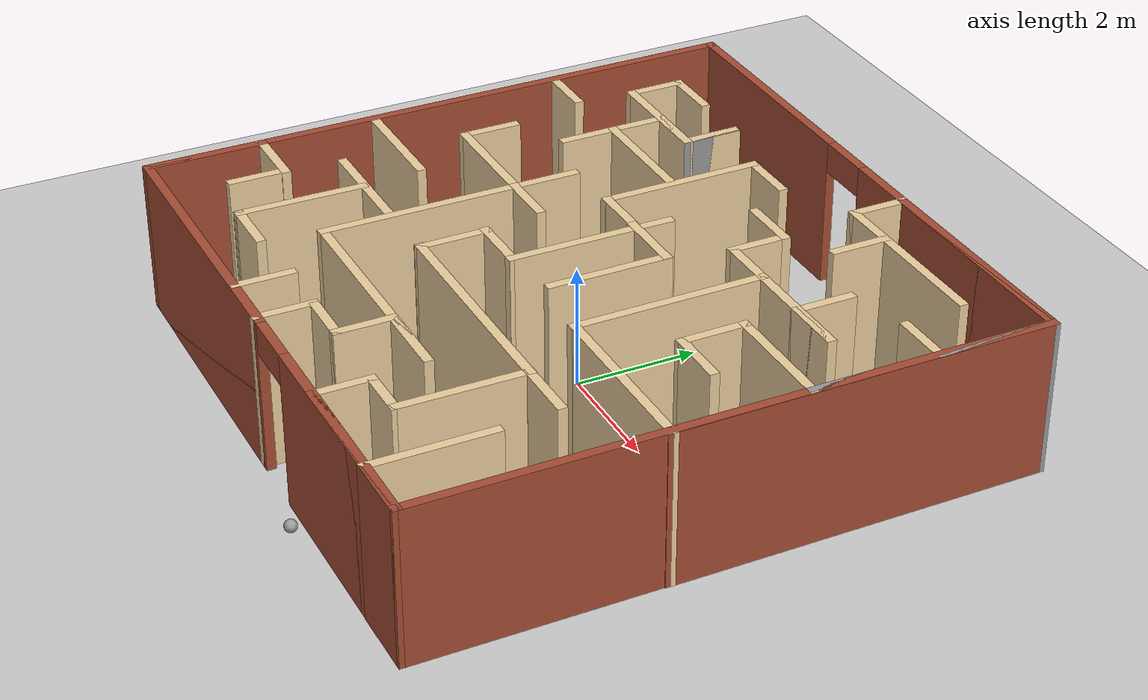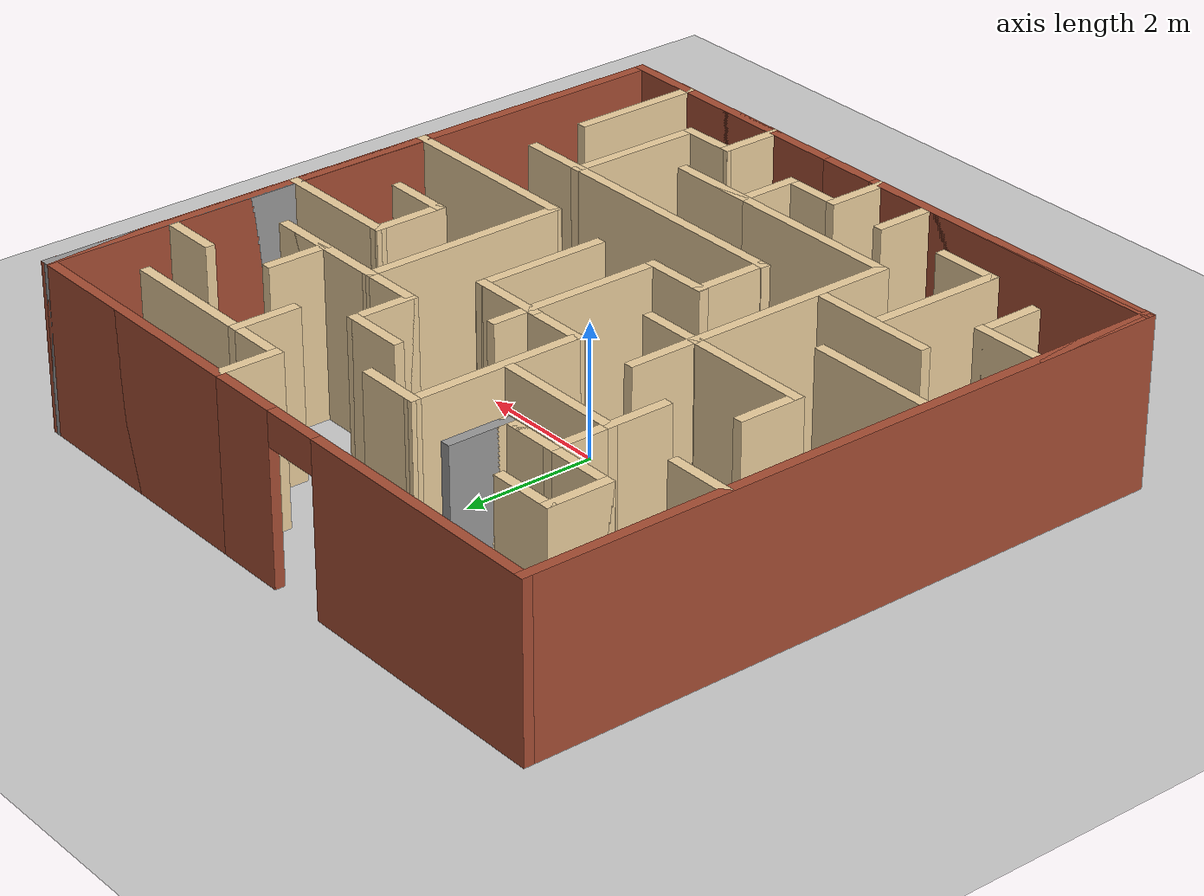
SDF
<sdf version="1.7">
 <world name="default">
  <light name="sun" type="directional">
   <pose>0 0 10 0 -0 0</pose>
   <diffuse>0.8 0.8 0.8 1</diffuse>
   <specular>0.2 0.2 0.2 1</specular>
   <attenuation>
    <range>1000</range>
    <constant>0.9</constant>
    <linear>0.01</linear>
    <quadratic>0.001</quadratic>
   </attenuation>
   <direction>-0.5 0.1 -0.9</direction>
   <spot><inner_angle>0</inner_angle><outer_angle>0</outer_angle><falloff>0</falloff></spot>
  </light>
  <model name="ground_plane">
   <static>1</static>
   <link name="link">
    <collision name="collision">
     <geometry><plane><normal>0 0 1</normal><size>100 100</size></plane></geometry>
     <surface>
      <contact><collide_bitmask>65535</collide_bitmask></contact>
      <friction><ode><mu>100</mu><mu2>50</mu2></ode></friction>
     </surface>
    </collision>
    <visual name="visual">
     <cast_shadows>0</cast_shadows>
     <geometry><plane><normal>0 0 1</normal><size>100 100</size></plane></geometry>
     <material>
      <script><uri>file://media/materials/scripts/gazebo.material</uri><name>Gazebo/Grey</name></script>
     </material>
    </visual>
   </link>
  </model>
  <gravity>0 0 -9.8</gravity>
  <magnetic_field>6e-06 2.3e-05 -4.2e-05</magnetic_field>
  <atmosphere type="adiabatic"/>
  <physics type="ode">
   <max_step_size>0.001</max_step_size>
   <real_time_factor>1</real_time_factor>
   <real_time_update_rate>1000</real_time_update_rate>
  </physics>
  <scene><ambient>0.4 0.4 0.4 1</ambient><background>0.7 0.7 0.7 1</background><shadows>1</shadows></scene>
  <spherical_coordinates>
   <surface_model>EARTH_WGS84</surface_model>
   <latitude_deg>0</latitude_deg>
   <longitude_deg>0</longitude_deg>
   <elevation>0</elevation>
   <heading_deg>0</heading_deg>
  </spherical_coordinates>
  <model name="Maze">
   <link name="Wall_100">
    <collision name="Wall_100_Collision">
     <geometry><box><size>1 0.15 2.5</size></box></geometry>
     <pose>0 0 1.25 0 -0 0</pose>
    </collision>
    <visual name="Wall_100_Visual">
     <pose>0 0 1.25 0 -0 0</pose>
     <geometry><box><size>1 0.15 2.5</size></box></geometry>
     <material>
      <script><uri>file://media/materials/scripts/gazebo.material</uri><name>Gazebo/Grey</name></script>
      <ambient>0.921569 0.807843 0.615686 1</ambient>
     </material>
     <meta><layer>0</layer></meta>
    </visual>
    <pose>3.50747 0.09143 0 0 -0 0</pose>
   </link>
   <link name="Wall_102">
    <collision name="Wall_102_Collision">
     <geometry><box><size>6.14369 0.15 2.5</size></box></geometry>
     <pose>0 0 1.25 0 -0 0</pose>
    </collision>
    <visual name="Wall_102_Visual">
     <pose>0 0 1.25 0 -0 0</pose>
     <geometry><box><size>6.14369 0.15 2.5</size></box></geometry>
     <material>
      <script><uri>file://media/materials/scripts/gazebo.material</uri><name>Gazebo/Bricks</name></script>
      <ambient>1 1 1 1</ambient>
     </material>
     <meta><layer>0</layer></meta>
    </visual>
    <pose>4.92491 1.9307 0 0 -0 -1.56827</pose>
   </link>
   <link name="Wall_103">
    <collision name="Wall_103_Collision">
     <geometry><box><size>3 0.15 2.5</size></box></geometry>
     <pose>0 0 1.25 0 -0 0</pose>
    </collision>
    <visual name="Wall_103_Visual">
     <pose>0 0 1.25 0 -0 0</pose>
     <geometry><box><size>3 0.15 2.5</size></box></geometry>
     <material>
      <script><uri>file://media/materials/scripts/gazebo.material</uri><name>Gazebo/Grey</name></script>
      <ambient>0.921569 0.807843 0.615686 1</ambient>
     </material>
     <meta><layer>0</layer></meta>
    </visual>
    <pose>3.50747 -1.05857 0 0 -0 3.14159</pose>
   </link>
   <link name="Wall_104">
    <collision name="Wall_104_Collision">
     <geometry><box><size>3.14371 0.15 2.5</size></box></geometry>
     <pose>0 0 1.25 0 -0 0</pose>
    </collision>
    <visual name="Wall_104_Visual">
     <pose>0 0 1.25 0 -0 0</pose>
     <geometry><box><size>3.14371 0.15 2.5</size></box></geometry>
     <material>
      <script><uri>file://media/materials/scripts/gazebo.material</uri><name>Gazebo/Grey</name></script>
      <ambient>0.921569 0.807843 0.615686 1</ambient>
     </material>
     <meta><layer>0</layer></meta>
    </visual>
    <pose>2.07491 0.430702 0 0 -0 1.57585</pose>
   </link>
   <link name="Wall_105">
    <collision name="Wall_105_Collision">
     <geometry><box><size>2 0.15 2.5</size></box></geometry>
     <pose>0 0 1.25 0 -0 0</pose>
    </collision>
    <visual name="Wall_105_Visual">
     <pose>0 0 1.25 0 -0 0</pose>
     <geometry><box><size>2 0.15 2.5</size></box></geometry>
     <material>
      <script><uri>file://media/materials/scripts/gazebo.material</uri><name>Gazebo/Grey</name></script>
      <ambient>0.921569 0.807843 0.615686 1</ambient>
     </material>
     <meta><layer>0</layer></meta>
    </visual>
    <pose>2.99234 1.92754 0 0 -0 0</pose>
   </link>
   <link name="Wall_107">
    <collision name="Wall_107_Collision">
     <geometry><box><size>1 0.15 2.5</size></box></geometry>
     <pose>0 0 1.25 0 -0 0</pose>
    </collision>
    <visual name="Wall_107_Visual">
     <pose>0 0 1.25 0 -0 0</pose>
     <geometry><box><size>1 0.15 2.5</size></box></geometry>
     <material>
      <script><uri>file://media/materials/scripts/gazebo.material</uri><name>Gazebo/Grey</name></script>
      <ambient>0.921569 0.807843 0.615686 1</ambient>
     </material>
     <meta><layer>0</layer></meta>
    </visual>
    <pose>3.49234 1.92754 0 0 -0 3.14159</pose>
   </link>
   <link name="Wall_108">
    <collision name="Wall_108_Collision">
     <geometry><box><size>1 0.15 2.5</size></box></geometry>
     <pose>0 0 1.25 0 -0 0</pose>
    </collision>
    <visual name="Wall_108_Visual">
     <pose>0 0 1.25 0 -0 0</pose>
     <geometry><box><size>1 0.15 2.5</size></box></geometry>
     <material>
      <script><uri>file://media/materials/scripts/gazebo.material</uri><name>Gazebo/Grey</name></script>
      <ambient>0.921569 0.807843 0.615686 1</ambient>
     </material>
     <meta><layer>0</layer></meta>
    </visual>
    <pose>3.06734 2.35254 0 0 -0 1.5708</pose>
   </link>
   <link name="Wall_110">
    <collision name="Wall_110_Collision">
     <geometry><box><size>1 0.15 2.5</size></box></geometry>
     <pose>0 0 1.25 0 -0 0</pose>
    </collision>
    <visual name="Wall_110_Visual">
     <pose>0 0 1.25 0 -0 0</pose>
     <geometry><box><size>1 0.15 2.5</size></box></geometry>
     <material>
      <script><uri>file://media/materials/scripts/gazebo.material</uri><name>Gazebo/Grey</name></script>
      <ambient>0.921569 0.807843 0.615686 1</ambient>
     </material>
     <meta><layer>0</layer></meta>
    </visual>
    <pose>1.64234 1.92754 0 0 -0 3.14159</pose>
   </link>
   <link name="Wall_111">
    <collision name="Wall_111_Collision">
     <geometry><box><size>1 0.15 2.5</size></box></geometry>
     <pose>0 0 1.25 0 -0 0</pose>
    </collision>
    <visual name="Wall_111_Visual">
     <pose>0 0 1.25 0 -0 0</pose>
     <geometry><box><size>1 0.15 2.5</size></box></geometry>
     <material>
      <script><uri>file://media/materials/scripts/gazebo.material</uri><name>Gazebo/Grey</name></script>
      <ambient>0.921569 0.807843 0.615686 1</ambient>
     </material>
     <meta><layer>0</layer></meta>
    </visual>
    <pose>1.21734 2.35254 0 0 -0 1.5708</pose>
   </link>
   <link name="Wall_112">
    <collision name="Wall_112_Collision">
     <geometry><box><size>1 0.15 2.5</size></box></geometry>
     <pose>0 0 1.25 0 -0 0</pose>
    </collision>
    <visual name="Wall_112_Visual">
     <pose>0 0 1.25 0 -0 0</pose>
     <geometry><box><size>1 0.15 2.5</size></box></geometry>
     <material>
      <script><uri>file://media/materials/scripts/gazebo.material</uri><name>Gazebo/Grey</name></script>
      <ambient>0.921569 0.807843 0.615686 1</ambient>
     </material>
     <meta><layer>0</layer></meta>
    </visual>
    <pose>0.792344 2.77754 0 0 -0 3.14159</pose>
   </link>
   <link name="Wall_118">
    <collision name="Wall_118_Collision">
     <geometry><box><size>1.06052 0.15 2.5</size></box></geometry>
     <pose>0 0 1.25 0 -0 0</pose>
    </collision>
    <visual name="Wall_118_Visual">
     <pose>0 0 1.25 0 -0 0</pose>
     <geometry><box><size>1.06052 0.15 2.5</size></box></geometry>
     <material>
      <script><uri>file://media/materials/scripts/gazebo.material</uri><name>Gazebo/Grey</name></script>
      <ambient>0.921569 0.807843 0.615686 1</ambient>
     </material>
     <meta><layer>0</layer></meta>
    </visual>
    <pose>-0.432041 -1.05866 0 0 -0 0.008305</pose>
   </link>
   <link name="Wall_119">
    <collision name="Wall_119_Collision">
     <geometry><box><size>2.70512 0.15 2.5</size></box></geometry>
     <pose>0 0 1.25 0 -0 0</pose>
    </collision>
    <visual name="Wall_119_Visual">
     <pose>0 0 1.25 0 -0 0</pose>
     <geometry><box><size>2.70512 0.15 2.5</size></box></geometry>
     <material>
      <script><uri>file://media/materials/scripts/gazebo.material</uri><name>Gazebo/Grey</name></script>
      <ambient>0.921569 0.807843 0.615686 1</ambient>
     </material>
     <meta><layer>0</layer></meta>
    </visual>
    <pose>0.026985 0.215107 0 0 -0 1.56784</pose>
   </link>
   <link name="Wall_121">
    <collision name="Wall_121_Collision">
     <geometry><box><size>1 0.15 2.5</size></box></geometry>
     <pose>0 0 1.25 0 -0 0</pose>
    </collision>
    <visual name="Wall_121_Visual">
     <pose>0 0 1.25 0 -0 0</pose>
     <geometry><box><size>1 0.15 2.5</size></box></geometry>
     <material>
      <script><uri>file://media/materials/scripts/gazebo.material</uri><name>Gazebo/Grey</name></script>
      <ambient>0.921569 0.807843 0.615686 1</ambient>
     </material>
     <meta><layer>0</layer></meta>
    </visual>
    <pose>-0.500094 0.9678 0 0 -0 3.14159</pose>
   </link>
   <link name="Wall_122">
    <collision name="Wall_122_Collision">
     <geometry><box><size>2.66731 0.15 2.5</size></box></geometry>
     <pose>0 0 1.25 0 -0 0</pose>
    </collision>
    <visual name="Wall_122_Visual">
     <pose>0 0 1.25 0 -0 0</pose>
     <geometry><box><size>2.66731 0.15 2.5</size></box></geometry>
     <material>
      <script><uri>file://media/materials/scripts/gazebo.material</uri><name>Gazebo/Grey</name></script>
      <ambient>0.921569 0.807843 0.615686 1</ambient>
     </material>
     <meta><layer>0</layer></meta>
    </visual>
    <pose>-0.928875 2.21889 0 0 -0 1.5738</pose>
   </link>
   <link name="Wall_123">
    <collision name="Wall_123_Collision">
     <geometry><box><size>1 0.15 2.5</size></box></geometry>
     <pose>0 0 1.25 0 -0 0</pose>
    </collision>
    <visual name="Wall_123_Visual">
     <pose>0 0 1.25 0 -0 0</pose>
     <geometry><box><size>1 0.15 2.5</size></box></geometry>
     <material>
      <script><uri>file://media/materials/scripts/gazebo.material</uri><name>Gazebo/Grey</name></script>
      <ambient>0.921569 0.807843 0.615686 1</ambient>
     </material>
     <meta><layer>0</layer></meta>
    </visual>
    <pose>-0.507656 3.47754 0 0 -0 0</pose>
   </link>
   <link name="Wall_125">
    <collision name="Wall_125_Collision">
     <geometry><box><size>1.18147 0.15 2.5</size></box></geometry>
     <pose>0 0 1.25 0 -0 0</pose>
    </collision>
    <visual name="Wall_125_Visual">
     <pose>0 0 1.25 0 -0 0</pose>
     <geometry><box><size>1.18147 0.15 2.5</size></box></geometry>
     <material>
      <script><uri>file://media/materials/scripts/gazebo.material</uri><name>Gazebo/Grey</name></script>
      <ambient>0.921569 0.807843 0.615686 1</ambient>
     </material>
     <meta><layer>0</layer></meta>
    </visual>
    <pose>0.440643 0.960239 0 0 -0 0</pose>
   </link>
   <link name="Wall_126">
    <collision name="Wall_126_Collision">
     <geometry><box><size>2 0.15 2.5</size></box></geometry>
     <pose>0 0 1.25 0 -0 0</pose>
    </collision>
    <visual name="Wall_126_Visual">
     <pose>0 0 1.25 0 -0 0</pose>
     <geometry><box><size>2 0.15 2.5</size></box></geometry>
     <material>
      <script><uri>file://media/materials/scripts/gazebo.material</uri><name>Gazebo/Grey</name></script>
      <ambient>0.921569 0.807843 0.615686 1</ambient>
     </material>
     <meta><layer>0</layer></meta>
    </visual>
    <pose>0.963942 0.035239 0 0 -0 -1.5708</pose>
   </link>
   <link name="Wall_129">
    <collision name="Wall_129_Collision">
     <geometry><box><size>2 0.15 2.5</size></box></geometry>
     <pose>0 0 1.25 0 -0 0</pose>
    </collision>
    <visual name="Wall_129_Visual">
     <pose>0 0 1.25 0 -0 0</pose>
     <geometry><box><size>2 0.15 2.5</size></box></geometry>
     <material>
      <script><uri>file://media/materials/scripts/gazebo.material</uri><name>Gazebo/Grey</name></script>
      <ambient>0.921569 0.807843 0.615686 1</ambient>
     </material>
     <meta><layer>0</layer></meta>
    </visual>
    <pose>-1.98525 2.06712 0 0 -0 3.14159</pose>
   </link>
   <link name="Wall_131">
    <collision name="Wall_131_Collision">
     <geometry><box><size>1 0.15 2.5</size></box></geometry>
     <pose>0 0 1.25 0 -0 0</pose>
    </collision>
    <visual name="Wall_131_Visual">
     <pose>0 0 1.25 0 -0 0</pose>
     <geometry><box><size>1 0.15 2.5</size></box></geometry>
     <material>
      <script><uri>file://media/materials/scripts/gazebo.material</uri><name>Gazebo/Grey</name></script>
      <ambient>0.921569 0.807843 0.615686 1</ambient>
     </material>
     <meta><layer>0</layer></meta>
    </visual>
    <pose>-2.91025 2.49213 0 0 -0 1.5708</pose>
   </link>
   <link name="Wall_132">
    <collision name="Wall_132_Collision">
     <geometry><box><size>1 0.15 2.5</size></box></geometry>
     <pose>0 0 1.25 0 -0 0</pose>
    </collision>
    <visual name="Wall_132_Visual">
     <pose>0 0 1.25 0 -0 0</pose>
     <geometry><box><size>1 0.15 2.5</size></box></geometry>
     <material>
      <script><uri>file://media/materials/scripts/gazebo.material</uri><name>Gazebo/Grey</name></script>
      <ambient>0.921569 0.807843 0.615686 1</ambient>
     </material>
     <meta><layer>0</layer></meta>
    </visual>
    <pose>-2.48525 2.91712 0 0 -0 0</pose>
   </link>
   <link name="Wall_133">
    <collision name="Wall_133_Collision">
     <geometry><box><size>1 0.15 2.5</size></box></geometry>
     <pose>0 0 1.25 0 -0 0</pose>
    </collision>
    <visual name="Wall_133_Visual">
     <pose>0 0 1.25 0 -0 0</pose>
     <geometry><box><size>1 0.15 2.5</size></box></geometry>
     <material>
      <script><uri>file://media/materials/scripts/gazebo.material</uri><name>Gazebo/Grey</name></script>
      <ambient>1 1 1 1</ambient>
     </material>
     <meta><layer>0</layer></meta>
    </visual>
    <pose>-2.06025 3.34212 0 0 -0 1.5708</pose>
   </link>
   <link name="Wall_134">
    <collision name="Wall_134_Collision">
     <geometry><box><size>1 0.15 2.5</size></box></geometry>
     <pose>0 0 1.25 0 -0 0</pose>
    </collision>
    <visual name="Wall_134_Visual">
     <pose>0 0 1.25 0 -0 0</pose>
     <geometry><box><size>1 0.15 2.5</size></box></geometry>
     <material>
      <script><uri>file://media/materials/scripts/gazebo.material</uri><name>Gazebo/Grey</name></script>
      <ambient>0.921569 0.807843 0.615686 1</ambient>
     </material>
     <meta><layer>0</layer></meta>
    </visual>
    <pose>-2.06025 3.34212 0 0 -0 -1.5708</pose>
   </link>
   <link name="Wall_135">
    <collision name="Wall_135_Collision">
     <geometry><box><size>2 0.15 2.5</size></box></geometry>
     <pose>0 0 1.25 0 -0 0</pose>
    </collision>
    <visual name="Wall_135_Visual">
     <pose>0 0 1.25 0 -0 0</pose>
     <geometry><box><size>2 0.15 2.5</size></box></geometry>
     <material>
      <script><uri>file://media/materials/scripts/gazebo.material</uri><name>Gazebo/Grey</name></script>
      <ambient>0.921569 0.807843 0.615686 1</ambient>
     </material>
     <meta><layer>0</layer></meta>
    </visual>
    <pose>-2.98525 2.91712 0 0 -0 3.14159</pose>
   </link>
   <link name="Wall_136">
    <collision name="Wall_136_Collision">
     <geometry><box><size>1 0.15 2.5</size></box></geometry>
     <pose>0 0 1.25 0 -0 0</pose>
    </collision>
    <visual name="Wall_136_Visual">
     <pose>0 0 1.25 0 -0 0</pose>
     <geometry><box><size>1 0.15 2.5</size></box></geometry>
     <material>
      <script><uri>file://media/materials/scripts/gazebo.material</uri><name>Gazebo/Grey</name></script>
      <ambient>0.921569 0.807843 0.615686 1</ambient>
     </material>
     <meta><layer>0</layer></meta>
    </visual>
    <pose>-3.91025 3.34212 0 0 -0 1.5708</pose>
   </link>
   <link name="Wall_137">
    <collision name="Wall_137_Collision">
     <geometry><box><size>1 0.15 2.5</size></box></geometry>
     <pose>0 0 1.25 0 -0 0</pose>
    </collision>
    <visual name="Wall_137_Visual">
     <pose>0 0 1.25 0 -0 0</pose>
     <geometry><box><size>1 0.15 2.5</size></box></geometry>
     <material>
      <script><uri>file://media/materials/scripts/gazebo.material</uri><name>Gazebo/Grey</name></script>
      <ambient>0.921569 0.807843 0.615686 1</ambient>
     </material>
     <meta><layer>0</layer></meta>
    </visual>
    <pose>-3.48525 3.76713 0 0 -0 0</pose>
   </link>
   <link name="Wall_139">
    <collision name="Wall_139_Collision">
     <geometry><box><size>1 0.15 2.5</size></box></geometry>
     <pose>0 0 1.25 0 -0 0</pose>
    </collision>
    <visual name="Wall_139_Visual">
     <pose>0 0 1.25 0 -0 0</pose>
     <geometry><box><size>1 0.15 2.5</size></box></geometry>
     <material>
      <script><uri>file://media/materials/scripts/gazebo.material</uri><name>Gazebo/Grey</name></script>
      <ambient>0.921569 0.807843 0.615686 1</ambient>
     </material>
     <meta><layer>0</layer></meta>
    </visual>
    <pose>-2.91025 1.64213 0 0 -0 -1.5708</pose>
   </link>
   <link name="Wall_141">
    <collision name="Wall_141_Collision">
     <geometry><box><size>5 0.15 2.5</size></box></geometry>
     <pose>0 0 1.25 0 -0 0</pose>
    </collision>
    <visual name="Wall_141_Visual">
     <pose>0 0 1.25 0 -0 0</pose>
     <geometry><box><size>5 0.15 2.5</size></box></geometry>
     <material>
      <script><uri>file://media/materials/scripts/gazebo.material</uri><name>Gazebo/Bricks</name></script>
      <ambient>0.435294 0.796078 0.67451 1</ambient>
     </material>
     <meta><layer>0</layer></meta>
    </visual>
    <pose>-2.50766 -4.92246 0 0 -0 0</pose>
   </link>
   <link name="Wall_142">
    <collision name="Wall_142_Collision">
     <geometry><box><size>1 0.15 2.5</size></box></geometry>
     <pose>0 0 1.25 0 -0 0</pose>
    </collision>
    <visual name="Wall_142_Visual">
     <pose>0 0 1.25 0 -0 0</pose>
     <geometry><box><size>1 0.15 2.5</size></box></geometry>
     <material>
      <script><uri>file://media/materials/scripts/gazebo.material</uri><name>Gazebo/Grey</name></script>
      <ambient>0.921569 0.807843 0.615686 1</ambient>
     </material>
     <meta><layer>0</layer></meta>
    </visual>
    <pose>-0.082656 -4.49746 0 0 -0 1.5708</pose>
   </link>
   <link name="Wall_143">
    <collision name="Wall_143_Collision">
     <geometry><box><size>1 0.15 2.5</size></box></geometry>
     <pose>0 0 1.25 0 -0 0</pose>
    </collision>
    <visual name="Wall_143_Visual">
     <pose>0 0 1.25 0 -0 0</pose>
     <geometry><box><size>1 0.15 2.5</size></box></geometry>
     <material>
      <script><uri>file://media/materials/scripts/gazebo.material</uri><name>Gazebo/Grey</name></script>
      <ambient>0.921569 0.807843 0.615686 1</ambient>
     </material>
     <meta><layer>0</layer></meta>
    </visual>
    <pose>0.342344 -4.07246 0 0 -0 0</pose>
   </link>
   <link name="Wall_144">
    <collision name="Wall_144_Collision">
     <geometry><box><size>1 0.15 2.5</size></box></geometry>
     <pose>0 0 1.25 0 -0 0</pose>
    </collision>
    <visual name="Wall_144_Visual">
     <pose>0 0 1.25 0 -0 0</pose>
     <geometry><box><size>1 0.15 2.5</size></box></geometry>
     <material>
      <script><uri>file://media/materials/scripts/gazebo.material</uri><name>Gazebo/Grey</name></script>
      <ambient>0.921569 0.807843 0.615686 1</ambient>
     </material>
     <meta><layer>0</layer></meta>
    </visual>
    <pose>0.767344 -3.64746 0 0 -0 1.5708</pose>
   </link>
   <link name="Wall_145">
    <collision name="Wall_145_Collision">
     <geometry><box><size>1.3327 0.15 2.5</size></box></geometry>
     <pose>0 0 1.25 0 -0 0</pose>
    </collision>
    <visual name="Wall_145_Visual">
     <pose>0 0 1.25 0 -0 0</pose>
     <geometry><box><size>1.3327 0.15 2.5</size></box></geometry>
     <material>
      <script><uri>file://media/materials/scripts/gazebo.material</uri><name>Gazebo/Grey</name></script>
      <ambient>0.921569 0.807843 0.615686 1</ambient>
     </material>
     <meta><layer>0</layer></meta>
    </visual>
    <pose>1.3587 -3.22246 0 0 -0 0</pose>
   </link>
   <link name="Wall_146">
    <collision name="Wall_146_Collision">
     <geometry><box><size>4 0.15 2.5</size></box></geometry>
     <pose>0 0 1.25 0 -0 0</pose>
    </collision>
    <visual name="Wall_146_Visual">
     <pose>0 0 1.25 0 -0 0</pose>
     <geometry><box><size>4 0.15 2.5</size></box></geometry>
     <material>
      <script><uri>file://media/materials/scripts/gazebo.material</uri><name>Gazebo/Grey</name></script>
      <ambient>0.921569 0.807843 0.615686 1</ambient>
     </material>
     <meta><layer>0</layer></meta>
    </visual>
    <pose>0.025048 -3.22246 0 0 -0 3.14159</pose>
   </link>
   <link name="Wall_147">
    <collision name="Wall_147_Collision">
     <geometry><box><size>4.25056 0.15 2.5</size></box></geometry>
     <pose>0 0 1.25 0 -0 0</pose>
    </collision>
    <visual name="Wall_147_Visual">
     <pose>0 0 1.25 0 -0 0</pose>
     <geometry><box><size>4.25056 0.15 2.5</size></box></geometry>
     <material>
      <script><uri>file://media/materials/scripts/gazebo.material</uri><name>Gazebo/Grey</name></script>
      <ambient>0.921569 0.807843 0.615686 1</ambient>
     </material>
     <meta><layer>0</layer></meta>
    </visual>
    <pose>-1.90751 -1.17246 0 0 -0 1.5708</pose>
   </link>
   <link name="Wall_154">
    <collision name="Wall_154_Collision">
     <geometry><box><size>1.99244 0.15 2.5</size></box></geometry>
     <pose>0 0 1.25 0 -0 0</pose>
    </collision>
    <visual name="Wall_154_Visual">
     <pose>0 0 1.25 0 -0 0</pose>
     <geometry><box><size>1.99244 0.15 2.5</size></box></geometry>
     <material>
      <script><uri>file://media/materials/scripts/gazebo.material</uri><name>Gazebo/Grey</name></script>
      <ambient>0.921569 0.807843 0.615686 1</ambient>
     </material>
     <meta><layer>0</layer></meta>
    </visual>
    <pose>-2.84347 -0.110569 0 0 -0 3.14159</pose>
   </link>
   <link name="Wall_155">
    <collision name="Wall_155_Collision">
     <geometry><box><size>1 0.15 2.5</size></box></geometry>
     <pose>0 0 1.25 0 -0 0</pose>
    </collision>
    <visual name="Wall_155_Visual">
     <pose>0 0 1.25 0 -0 0</pose>
     <geometry><box><size>1 0.15 2.5</size></box></geometry>
     <material>
      <script><uri>file://media/materials/scripts/gazebo.material</uri><name>Gazebo/Grey</name></script>
      <ambient>0.921569 0.807843 0.615686 1</ambient>
     </material>
     <meta><layer>0</layer></meta>
    </visual>
    <pose>-3.77225 0.314431 0 0 -0 1.5708</pose>
   </link>
   <link name="Wall_157">
    <collision name="Wall_157_Collision">
     <geometry><box><size>1 0.15 2.5</size></box></geometry>
     <pose>0 0 1.25 0 -0 0</pose>
    </collision>
    <visual name="Wall_157_Visual">
     <pose>0 0 1.25 0 -0 0</pose>
     <geometry><box><size>1 0.15 2.5</size></box></geometry>
     <material>
      <script><uri>file://media/materials/scripts/gazebo.material</uri><name>Gazebo/Grey</name></script>
      <ambient>0.921569 0.807843 0.615686 1</ambient>
     </material>
     <meta><layer>0</layer></meta>
    </visual>
    <pose>-1.49725 -0.110569 0 0 -0 0</pose>
   </link>
   <link name="Wall_159">
    <collision name="Wall_159_Collision">
     <geometry><box><size>2 0.15 2.5</size></box></geometry>
     <pose>0 0 1.25 0 -0 0</pose>
    </collision>
    <visual name="Wall_159_Visual">
     <pose>0 0 1.25 0 -0 0</pose>
     <geometry><box><size>2 0.15 2.5</size></box></geometry>
     <material>
      <script><uri>file://media/materials/scripts/gazebo.material</uri><name>Gazebo/Grey</name></script>
      <ambient>0.921569 0.807843 0.615686 1</ambient>
     </material>
     <meta><layer>0</layer></meta>
    </visual>
    <pose>-2.86994 -2.15216 0 0 -0 3.14159</pose>
   </link>
   <link name="Wall_161">
    <collision name="Wall_161_Collision">
     <geometry><box><size>2.11344 0.15 2.5</size></box></geometry>
     <pose>0 0 1.25 0 -0 0</pose>
    </collision>
    <visual name="Wall_161_Visual">
     <pose>0 0 1.25 0 -0 0</pose>
     <geometry><box><size>2.11344 0.15 2.5</size></box></geometry>
     <material>
      <script><uri>file://media/materials/scripts/gazebo.material</uri><name>Gazebo/Grey</name></script>
      <ambient>0.921569 0.807843 0.615686 1</ambient>
     </material>
     <meta><layer>0</layer></meta>
    </visual>
    <pose>-2.95061 -3.16411 0 0 -0 -1.5862</pose>
   </link>
   <link name="Wall_162">
    <collision name="Wall_162_Collision">
     <geometry><box><size>1 0.15 2.5</size></box></geometry>
     <pose>0 0 1.25 0 -0 0</pose>
    </collision>
    <visual name="Wall_162_Visual">
     <pose>0 0 1.25 0 -0 0</pose>
     <geometry><box><size>1 0.15 2.5</size></box></geometry>
     <material>
      <script><uri>file://media/materials/scripts/gazebo.material</uri><name>Gazebo/Grey</name></script>
      <ambient>0.921569 0.807843 0.615686 1</ambient>
     </material>
     <meta><layer>0</layer></meta>
    </visual>
    <pose>-2.52561 -4.14582 0 0 -0 0</pose>
   </link>
   <link name="Wall_164">
    <collision name="Wall_164_Collision">
     <geometry><box><size>1 0.15 2.5</size></box></geometry>
     <pose>0 0 1.25 0 -0 0</pose>
    </collision>
    <visual name="Wall_164_Visual">
     <pose>0 0 1.25 0 -0 0</pose>
     <geometry><box><size>1 0.15 2.5</size></box></geometry>
     <material>
      <script><uri>file://media/materials/scripts/gazebo.material</uri><name>Gazebo/Grey</name></script>
      <ambient>0.921569 0.807843 0.615686 1</ambient>
     </material>
     <meta><layer>0</layer></meta>
    </visual>
    <pose>-1.02244 -4.47952 0 0 -0 1.5708</pose>
   </link>
   <link name="Wall_56">
    <pose>-0.007656 4.92754 0 0 -0 0</pose>
    <visual name="Wall_56_Visual_0">
     <pose>-2.99233 0 1.25 0 -0 0</pose>
     <geometry><box><size>4.01534 0.15 2.5</size></box></geometry>
     <material>
      <script><uri>file://media/materials/scripts/gazebo.material</uri><name>Gazebo/Bricks</name></script>
      <ambient>1 1 1 1</ambient>
     </material>
     <meta><layer>0</layer></meta>
    </visual>
    <collision name="Wall_56_Collision_0">
     <geometry><box><size>4.01534 0.15 2.5</size></box></geometry>
     <pose>-2.99233 0 1.25 0 -0 0</pose>
    </collision>
    <visual name="Wall_56_Visual_1">
     <pose>2.45767 0 1.25 0 -0 0</pose>
     <geometry><box><size>5.08466 0.15 2.5</size></box></geometry>
     <material>
      <script><uri>file://media/materials/scripts/gazebo.material</uri><name>Gazebo/Bricks</name></script>
      <ambient>1 1 1 1</ambient>
     </material>
     <meta><layer>0</layer></meta>
    </visual>
    <collision name="Wall_56_Collision_1">
     <geometry><box><size>5.08466 0.15 2.5</size></box></geometry>
     <pose>2.45767 0 1.25 0 -0 0</pose>
    </collision>
    <visual name="Wall_56_Visual_2">
     <pose>-0.534661 0 2.25 0 -0 0</pose>
     <geometry><box><size>0.9 0.15 0.5</size></box></geometry>
     <material>
      <script><uri>file://media/materials/scripts/gazebo.material</uri><name>Gazebo/Bricks</name></script>
      <ambient>1 1 1 1</ambient>
     </material>
     <meta><layer>0</layer></meta>
    </visual>
    <collision name="Wall_56_Collision_2">
     <geometry><box><size>0.9 0.15 0.5</size></box></geometry>
     <pose>-0.534661 0 2.25 0 -0 0</pose>
    </collision>
   </link>
   <link name="Wall_59">
    <collision name="Wall_59_Collision">
     <geometry><box><size>10 0.15 2.5</size></box></geometry>
     <pose>0 0 1.25 0 -0 0</pose>
    </collision>
    <visual name="Wall_59_Visual">
     <pose>0 0 1.25 0 -0 0</pose>
     <geometry><box><size>10 0.15 2.5</size></box></geometry>
     <material>
      <script><uri>file://media/materials/scripts/gazebo.material</uri><name>Gazebo/Bricks</name></script>
      <ambient>1 1 1 1</ambient>
     </material>
     <meta><layer>0</layer></meta>
    </visual>
    <pose>-4.93266 0.002536 0 0 -0 -1.5708</pose>
   </link>
   <link name="Wall_60">
    <pose>-0.007656 -4.92246 0 0 -0 0</pose>
    <visual name="Wall_60_Visual_0">
     <pose>-2.45488 0 1.25 0 -0 0</pose>
     <geometry><box><size>5.09024 0.15 2.5</size></box></geometry>
     <material>
      <script><uri>file://media/materials/scripts/gazebo.material</uri><name>Gazebo/Bricks</name></script>
      <ambient>1 1 1 1</ambient>
     </material>
     <meta><layer>0</layer></meta>
    </visual>
    <collision name="Wall_60_Collision_0">
     <geometry><box><size>5.09024 0.15 2.5</size></box></geometry>
     <pose>-2.45488 0 1.25 0 -0 0</pose>
    </collision>
    <visual name="Wall_60_Visual_1">
     <pose>2.99512 0 1.25 0 -0 0</pose>
     <geometry><box><size>4.00976 0.15 2.5</size></box></geometry>
     <material>
      <script><uri>file://media/materials/scripts/gazebo.material</uri><name>Gazebo/Bricks</name></script>
      <ambient>1 1 1 1</ambient>
     </material>
     <meta><layer>0</layer></meta>
    </visual>
    <collision name="Wall_60_Collision_1">
     <geometry><box><size>4.00976 0.15 2.5</size></box></geometry>
     <pose>2.99512 0 1.25 0 -0 0</pose>
    </collision>
    <visual name="Wall_60_Visual_2">
     <pose>0.540236 0 2.25 0 -0 0</pose>
     <geometry><box><size>0.9 0.15 0.5</size></box></geometry>
     <material>
      <script><uri>file://media/materials/scripts/gazebo.material</uri><name>Gazebo/Bricks</name></script>
      <ambient>1 1 1 1</ambient>
     </material>
     <meta><layer>0</layer></meta>
    </visual>
    <collision name="Wall_60_Collision_2">
     <geometry><box><size>0.9 0.15 0.5</size></box></geometry>
     <pose>0.540236 0 2.25 0 -0 0</pose>
    </collision>
   </link>
   <link name="Wall_61">
    <collision name="Wall_61_Collision">
     <geometry><box><size>10 0.15 2.5</size></box></geometry>
     <pose>0 0 1.25 0 -0 0</pose>
    </collision>
    <visual name="Wall_61_Visual">
     <pose>0 0 1.25 0 -0 0</pose>
     <geometry><box><size>10 0.15 2.5</size></box></geometry>
     <material>
      <script><uri>file://media/materials/scripts/gazebo.material</uri><name>Gazebo/Bricks</name></script>
      <ambient>1 1 1 1</ambient>
     </material>
     <meta><layer>0</layer></meta>
    </visual>
    <pose>4.91734 0.002536 0 0 -0 1.5708</pose>
   </link>
   <link name="Wall_63">
    <collision name="Wall_63_Collision">
     <geometry><box><size>2 0.15 2.5</size></box></geometry>
     <pose>0 0 1.25 0 -0 0</pose>
    </collision>
    <visual name="Wall_63_Visual">
     <pose>0 0 1.25 0 -0 0</pose>
     <geometry><box><size>2 0.15 2.5</size></box></geometry>
     <material>
      <script><uri>file://media/materials/scripts/gazebo.material</uri><name>Gazebo/Bricks</name></script>
      <ambient>0.435294 0.796078 0.67451 1</ambient>
     </material>
     <meta><layer>0</layer></meta>
    </visual>
    <pose>-4.93266 -3.99746 0 0 -0 1.5708</pose>
   </link>
   <link name="Wall_64">
    <collision name="Wall_64_Collision">
     <geometry><box><size>1.17391 0.15 2.5</size></box></geometry>
     <pose>0 0 1.25 0 -0 0</pose>
    </collision>
    <visual name="Wall_64_Visual">
     <pose>0 0 1.25 0 -0 0</pose>
     <geometry><box><size>1.17391 0.15 2.5</size></box></geometry>
     <material>
      <script><uri>file://media/materials/scripts/gazebo.material</uri><name>Gazebo/Grey</name></script>
      <ambient>0.921569 0.807843 0.615686 1</ambient>
     </material>
     <meta><layer>0</layer></meta>
    </visual>
    <pose>-4.4207 -3.07246 0 0 -0 0</pose>
   </link>
   <link name="Wall_65">
    <collision name="Wall_65_Collision">
     <geometry><box><size>1 0.15 2.5</size></box></geometry>
     <pose>0 0 1.25 0 -0 0</pose>
    </collision>
    <visual name="Wall_65_Visual">
     <pose>0 0 1.25 0 -0 0</pose>
     <geometry><box><size>1 0.15 2.5</size></box></geometry>
     <material>
      <script><uri>file://media/materials/scripts/gazebo.material</uri><name>Gazebo/Grey</name></script>
      <ambient>0.921569 0.807843 0.615686 1</ambient>
     </material>
     <meta><layer>0</layer></meta>
    </visual>
    <pose>-3.92387 -3.49746 0 0 -0 -1.5708</pose>
   </link>
   <link name="Wall_68">
    <collision name="Wall_68_Collision">
     <geometry><box><size>2 0.15 2.5</size></box></geometry>
     <pose>0 0 1.25 0 -0 0</pose>
    </collision>
    <visual name="Wall_68_Visual">
     <pose>0 0 1.25 0 -0 0</pose>
     <geometry><box><size>2 0.15 2.5</size></box></geometry>
     <material>
      <script><uri>file://media/materials/scripts/gazebo.material</uri><name>Gazebo/Grey</name></script>
      <ambient>0.921569 0.807843 0.615686 1</ambient>
     </material>
     <meta><layer>0</layer></meta>
    </visual>
    <pose>-3.99253 -1.18589 0 0 -0 0</pose>
   </link>
   <link name="Wall_71">
    <collision name="Wall_71_Collision">
     <geometry><box><size>1 0.15 2.5</size></box></geometry>
     <pose>0 0 1.25 0 -0 0</pose>
    </collision>
    <visual name="Wall_71_Visual">
     <pose>0 0 1.25 0 -0 0</pose>
     <geometry><box><size>1 0.15 2.5</size></box></geometry>
     <material>
      <script><uri>file://media/materials/scripts/gazebo.material</uri><name>Gazebo/Grey</name></script>
      <ambient>0.921569 0.807843 0.615686 1</ambient>
     </material>
     <meta><layer>0</layer></meta>
    </visual>
    <pose>-4.48497 1.99436 0 0 -0 0</pose>
   </link>
   <link name="Wall_73">
    <collision name="Wall_73_Collision">
     <geometry><box><size>4 0.15 2.5</size></box></geometry>
     <pose>0 0 1.25 0 -0 0</pose>
    </collision>
    <visual name="Wall_73_Visual">
     <pose>0 0 1.25 0 -0 0</pose>
     <geometry><box><size>4 0.15 2.5</size></box></geometry>
     <material>
      <script><uri>file://media/materials/scripts/gazebo.material</uri><name>Gazebo/Bricks</name></script>
      <ambient>1 1 1 1</ambient>
     </material>
     <meta><layer>0</layer></meta>
    </visual>
    <pose>2.99234 4.92754 0 0 -0 3.14159</pose>
   </link>
   <link name="Wall_74">
    <collision name="Wall_74_Collision">
     <geometry><box><size>1 0.15 2.5</size></box></geometry>
     <pose>0 0 1.25 0 -0 0</pose>
    </collision>
    <visual name="Wall_74_Visual">
     <pose>0 0 1.25 0 -0 0</pose>
     <geometry><box><size>1 0.15 2.5</size></box></geometry>
     <material>
      <script><uri>file://media/materials/scripts/gazebo.material</uri><name>Gazebo/Grey</name></script>
      <ambient>0.921569 0.807843 0.615686 1</ambient>
     </material>
     <meta><layer>0</layer></meta>
    </visual>
    <pose>1.06734 4.50254 0 0 -0 -1.5708</pose>
   </link>
   <link name="Wall_75">
    <collision name="Wall_75_Collision">
     <geometry><box><size>3 0.15 2.5</size></box></geometry>
     <pose>0 0 1.25 0 -0 0</pose>
    </collision>
    <visual name="Wall_75_Visual">
     <pose>0 0 1.25 0 -0 0</pose>
     <geometry><box><size>3 0.15 2.5</size></box></geometry>
     <material>
      <script><uri>file://media/materials/scripts/gazebo.material</uri><name>Gazebo/Grey</name></script>
      <ambient>0.921569 0.807843 0.615686 1</ambient>
     </material>
     <meta><layer>0</layer></meta>
    </visual>
    <pose>2.49234 4.07754 0 0 -0 0</pose>
   </link>
   <link name="Wall_77">
    <collision name="Wall_77_Collision">
     <geometry><box><size>1 0.15 2.5</size></box></geometry>
     <pose>0 0 1.25 0 -0 0</pose>
    </collision>
    <visual name="Wall_77_Visual">
     <pose>0 0 1.25 0 -0 0</pose>
     <geometry><box><size>1 0.15 2.5</size></box></geometry>
     <material>
      <script><uri>file://media/materials/scripts/gazebo.material</uri><name>Gazebo/Grey</name></script>
      <ambient>0.921569 0.807843 0.615686 1</ambient>
     </material>
     <meta><layer>0</layer></meta>
    </visual>
    <pose>1.49234 4.07754 0 0 -0 0</pose>
   </link>
   <link name="Wall_78">
    <collision name="Wall_78_Collision">
     <geometry><box><size>1 0.15 2.5</size></box></geometry>
     <pose>0 0 1.25 0 -0 0</pose>
    </collision>
    <visual name="Wall_78_Visual">
     <pose>0 0 1.25 0 -0 0</pose>
     <geometry><box><size>1 0.15 2.5</size></box></geometry>
     <material>
      <script><uri>file://media/materials/scripts/gazebo.material</uri><name>Gazebo/Grey</name></script>
      <ambient>0.921569 0.807843 0.615686 1</ambient>
     </material>
     <meta><layer>0</layer></meta>
    </visual>
    <pose>1.91734 3.65254 0 0 -0 -1.5708</pose>
   </link>
   <link name="Wall_80">
    <collision name="Wall_80_Collision">
     <geometry><box><size>2 0.15 2.5</size></box></geometry>
     <pose>0 0 1.25 0 -0 0</pose>
    </collision>
    <visual name="Wall_80_Visual">
     <pose>0 0 1.25 0 -0 0</pose>
     <geometry><box><size>2 0.15 2.5</size></box></geometry>
     <material>
      <script><uri>file://media/materials/scripts/gazebo.material</uri><name>Gazebo/Grey</name></script>
      <ambient>1 1 1 1</ambient>
     </material>
     <meta><layer>0</layer></meta>
    </visual>
    <pose>4.91734 4.00254 0 0 -0 -1.5708</pose>
   </link>
   <link name="Wall_81">
    <collision name="Wall_81_Collision">
     <geometry><box><size>1 0.15 2.5</size></box></geometry>
     <pose>0 0 1.25 0 -0 0</pose>
    </collision>
    <visual name="Wall_81_Visual">
     <pose>0 0 1.25 0 -0 0</pose>
     <geometry><box><size>1 0.15 2.5</size></box></geometry>
     <material>
      <script><uri>file://media/materials/scripts/gazebo.material</uri><name>Gazebo/Grey</name></script>
      <ambient>0.921569 0.807843 0.615686 1</ambient>
     </material>
     <meta><layer>0</layer></meta>
    </visual>
    <pose>4.49235 3.07754 0 0 -0 3.14159</pose>
   </link>
   <link name="Wall_83">
    <collision name="Wall_83_Collision">
     <geometry><box><size>1.15694 0.15 2.5</size></box></geometry>
     <pose>0 0 1.25 0 -0 0</pose>
    </collision>
    <visual name="Wall_83_Visual">
     <pose>0 0 1.25 0 -0 0</pose>
     <geometry><box><size>1.15694 0.15 2.5</size></box></geometry>
     <material>
      <script><uri>file://media/materials/scripts/gazebo.material</uri><name>Gazebo/Bricks</name></script>
      <ambient>1 1 1 1</ambient>
     </material>
     <meta><layer>0</layer></meta>
    </visual>
    <pose>4.41393 -4.92491 0 0 -0 -3.13673</pose>
   </link>
   <link name="Wall_84">
    <collision name="Wall_84_Collision">
     <geometry><box><size>2 0.15 2.5</size></box></geometry>
     <pose>0 0 1.25 0 -0 0</pose>
    </collision>
    <visual name="Wall_84_Visual">
     <pose>0 0 1.25 0 -0 0</pose>
     <geometry><box><size>2 0.15 2.5</size></box></geometry>
     <material>
      <script><uri>file://media/materials/scripts/gazebo.material</uri><name>Gazebo/Grey</name></script>
      <ambient>0.921569 0.807843 0.615686 1</ambient>
     </material>
     <meta><layer>0</layer></meta>
    </visual>
    <pose>3.91051 -3.99582 0 0 -0 1.5708</pose>
   </link>
   <link name="Wall_86">
    <collision name="Wall_86_Collision">
     <geometry><box><size>3 0.15 2.5</size></box></geometry>
     <pose>0 0 1.25 0 -0 0</pose>
    </collision>
    <visual name="Wall_86_Visual">
     <pose>0 0 1.25 0 -0 0</pose>
     <geometry><box><size>3 0.15 2.5</size></box></geometry>
     <material>
      <script><uri>file://media/materials/scripts/gazebo.material</uri><name>Gazebo/Bricks</name></script>
      <ambient>1 1 1 1</ambient>
     </material>
     <meta><layer>0</layer></meta>
    </visual>
    <pose>3.49234 -4.92246 0 0 -0 3.14159</pose>
   </link>
   <link name="Wall_87">
    <collision name="Wall_87_Collision">
     <geometry><box><size>1 0.15 2.5</size></box></geometry>
     <pose>0 0 1.25 0 -0 0</pose>
    </collision>
    <visual name="Wall_87_Visual">
     <pose>0 0 1.25 0 -0 0</pose>
     <geometry><box><size>1 0.15 2.5</size></box></geometry>
     <material>
      <script><uri>file://media/materials/scripts/gazebo.material</uri><name>Gazebo/Grey</name></script>
      <ambient>0.921569 0.807843 0.615686 1</ambient>
     </material>
     <meta><layer>0</layer></meta>
    </visual>
    <pose>2.06734 -4.49746 0 0 -0 1.5708</pose>
   </link>
   <link name="Wall_88">
    <collision name="Wall_88_Collision">
     <geometry><box><size>0.916861 0.15 2.5</size></box></geometry>
     <pose>0 0 1.25 0 -0 0</pose>
    </collision>
    <visual name="Wall_88_Visual">
     <pose>0 0 1.25 0 -0 0</pose>
     <geometry><box><size>0.916861 0.15 2.5</size></box></geometry>
     <material>
      <script><uri>file://media/materials/scripts/gazebo.material</uri><name>Gazebo/Grey</name></script>
      <ambient>0.921569 0.807843 0.615686 1</ambient>
     </material>
     <meta><layer>0</layer></meta>
    </visual>
    <pose>2.45076 -4.06868 0 0 -0 0.00986</pose>
   </link>
   <link name="Wall_89">
    <collision name="Wall_89_Collision">
     <geometry><box><size>2.10592 0.15 2.5</size></box></geometry>
     <pose>0 0 1.25 0 -0 0</pose>
    </collision>
    <visual name="Wall_89_Visual">
     <pose>0 0 1.25 0 -0 0</pose>
     <geometry><box><size>2.10592 0.15 2.5</size></box></geometry>
     <material>
      <script><uri>file://media/materials/scripts/gazebo.material</uri><name>Gazebo/Grey</name></script>
      <ambient>0.921569 0.807843 0.615686 1</ambient>
     </material>
     <meta><layer>0</layer></meta>
    </visual>
    <pose>2.84173 -3.07941 0 0 -0 1.56306</pose>
   </link>
   <link name="Wall_90">
    <collision name="Wall_90_Collision">
     <geometry><box><size>3.87902 0.15 2.5</size></box></geometry>
     <pose>0 0 1.25 0 -0 0</pose>
    </collision>
    <visual name="Wall_90_Visual">
     <pose>0 0 1.25 0 -0 0</pose>
     <geometry><box><size>3.87902 0.15 2.5</size></box></geometry>
     <material>
      <script><uri>file://media/materials/scripts/gazebo.material</uri><name>Gazebo/Grey</name></script>
      <ambient>0.921569 0.807843 0.615686 1</ambient>
     </material>
     <meta><layer>0</layer></meta>
    </visual>
    <pose>0.984783 -2.10904 0 0 -0 3.14159</pose>
   </link>
   <link name="Wall_91">
    <collision name="Wall_91_Collision">
     <geometry><box><size>1.19663 0.15 2.5</size></box></geometry>
     <pose>0 0 1.25 0 -0 0</pose>
    </collision>
    <visual name="Wall_91_Visual">
     <pose>0 0 1.25 0 -0 0</pose>
     <geometry><box><size>1.19663 0.15 2.5</size></box></geometry>
     <material>
      <script><uri>file://media/materials/scripts/gazebo.material</uri><name>Gazebo/Grey</name></script>
      <ambient>0.921569 0.807843 0.615686 1</ambient>
     </material>
     <meta><layer>0</layer></meta>
    </visual>
    <pose>-0.868383 -1.58574 0 0 -0 1.57802</pose>
   </link>
   <link name="Wall_95">
    <collision name="Wall_95_Collision">
     <geometry><box><size>1.08321 0.15 2.5</size></box></geometry>
     <pose>0 0 1.25 0 -0 0</pose>
    </collision>
    <visual name="Wall_95_Visual">
     <pose>0 0 1.25 0 -0 0</pose>
     <geometry><box><size>1.08321 0.15 2.5</size></box></geometry>
     <material>
      <script><uri>file://media/materials/scripts/gazebo.material</uri><name>Gazebo/Grey</name></script>
      <ambient>0.921569 0.807843 0.615686 1</ambient>
     </material>
     <meta><layer>0</layer></meta>
    </visual>
    <pose>3.31588 -2.10526 0 0 -0 0.008103</pose>
   </link>
   <link name="Wall_97">
    <collision name="Wall_97_Collision">
     <geometry><box><size>4 0.15 2.5</size></box></geometry>
     <pose>0 0 1.25 0 -0 0</pose>
    </collision>
    <visual name="Wall_97_Visual">
     <pose>0 0 1.25 0 -0 0</pose>
     <geometry><box><size>4 0.15 2.5</size></box></geometry>
     <material>
      <script><uri>file://media/materials/scripts/gazebo.material</uri><name>Gazebo/Grey</name></script>
      <ambient>1 1 1 1</ambient>
     </material>
     <meta><layer>0</layer></meta>
    </visual>
    <pose>4.91734 3.00254 0 0 -0 -1.5708</pose>
   </link>
   <link name="Wall_98">
    <collision name="Wall_98_Collision">
     <geometry><box><size>2 0.15 2.5</size></box></geometry>
     <pose>0 0 1.25 0 -0 0</pose>
    </collision>
    <visual name="Wall_98_Visual">
     <pose>0 0 1.25 0 -0 0</pose>
     <geometry><box><size>2 0.15 2.5</size></box></geometry>
     <material>
      <script><uri>file://media/materials/scripts/gazebo.material</uri><name>Gazebo/Grey</name></script>
      <ambient>0.921569 0.807843 0.615686 1</ambient>
     </material>
     <meta><layer>0</layer></meta>
    </visual>
    <pose>3.99234 1.07754 0 0 -0 3.14159</pose>
   </link>
   <link name="Wall_99">
    <collision name="Wall_99_Collision">
     <geometry><box><size>1.13657 0.15 2.5</size></box></geometry>
     <pose>0 0 1.25 0 -0 0</pose>
    </collision>
    <visual name="Wall_99_Visual">
     <pose>0 0 1.25 0 -0 0</pose>
     <geometry><box><size>1.13657 0.15 2.5</size></box></geometry>
     <material>
      <script><uri>file://media/materials/scripts/gazebo.material</uri><name>Gazebo/Grey</name></script>
      <ambient>0.921569 0.807843 0.615686 1</ambient>
     </material>
     <meta><layer>0</layer></meta>
    </visual>
    <pose>3.07112 0.584483 0 0 -0 -1.56313</pose>
   </link>
   <static>1</static>
  </model>
  <model name="my_ball">
   <link name="link_0">
    <inertial>
     <mass>1</mass>
     <inertia><ixx>0.1</ixx><ixy>0</ixy><ixz>0</ixz><iyy>0.1</iyy><iyz>0</iyz><izz>0.1</izz></inertia>
    </inertial>
    <visual name="visual">
     <geometry><sphere><radius>0.1</radius></sphere></geometry>
     <material>
      <lighting>1</lighting>
      <script><uri>file://media/materials/scripts/gazebo.material</uri><name>Gazebo/Grey</name></script>
      <shader type="pixel"><normal_map>__default__</normal_map></shader>
      <ambient>1 1 1 1</ambient>
      <diffuse>1 1 1 1</diffuse>
      <specular>1 1 1 1</specular>
      <emissive>1 1 1 1</emissive>
     </material>
    </visual>
    <collision name="collision">
     <geometry><sphere><radius>0.1</radius></sphere></geometry>
     <surface>
      <friction>
       <ode><mu>1</mu><mu2>1</mu2><fdir1>0 0 0</fdir1><slip1>0</slip1><slip2>0</slip2></ode>
       <torsional>
        <coefficient>1</coefficient>
        <patch_radius>0</patch_radius>
        <surface_radius>0</surface_radius>
        <use_patch_radius>1</use_patch_radius>
        <ode><slip>0</slip></ode>
       </torsional>
      </friction>
      <bounce><restitution_coefficient>0</restitution_coefficient><threshold>1e+06</threshold></bounce>
      <contact>
       <collide_without_contact>0</collide_without_contact>
       <collide_without_contact_bitmask>1</collide_without_contact_bitmask>
       <collide_bitmask>1</collide_bitmask>
       <ode>
        <soft_cfm>0</soft_cfm>
        <soft_erp>0.2</soft_erp>
        <kp>1e+13</kp>
        <kd>1</kd>
        <max_vel>0.01</max_vel>
        <min_depth>0</min_depth>
       </ode>
       <bullet>
        <split_impulse>1</split_impulse>
        <split_impulse_penetration_threshold>-0.01</split_impulse_penetration_threshold>
        <soft_cfm>0</soft_cfm>
        <soft_erp>0.2</soft_erp>
        <kp>1e+13</kp>
        <kd>1</kd>
       </bullet>
      </contact>
     </surface>
    </collision>
   </link>
   <static>0</static>
   <pose>1.6 -5.2 0.1 0 -0 0</pose>
  </model>
 </world>
</sdf>
